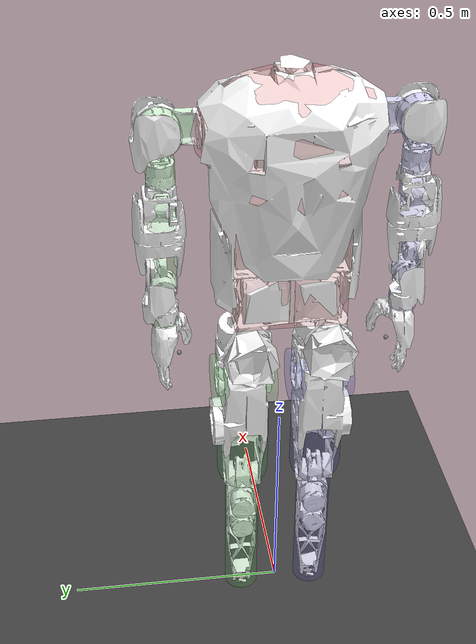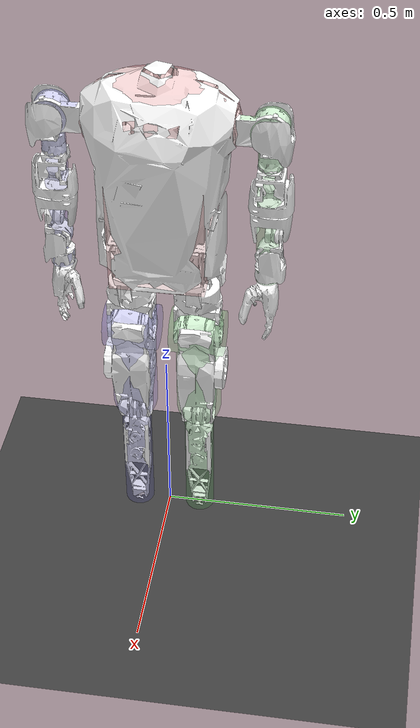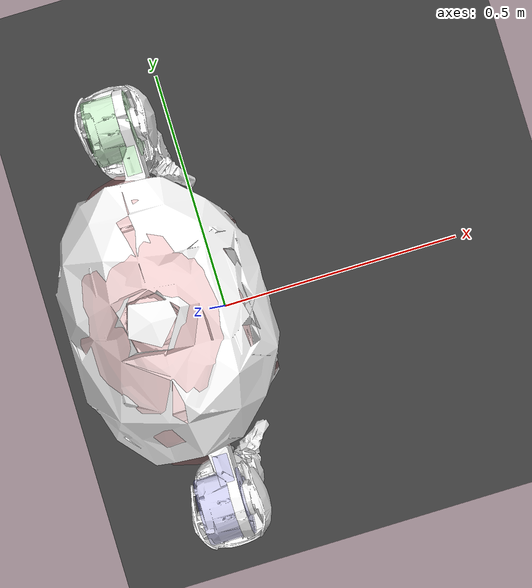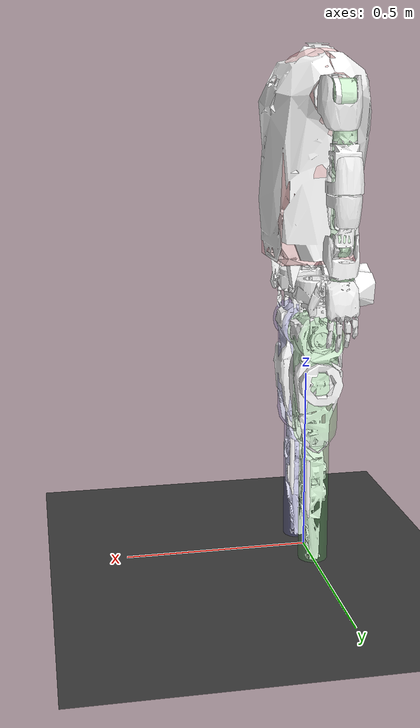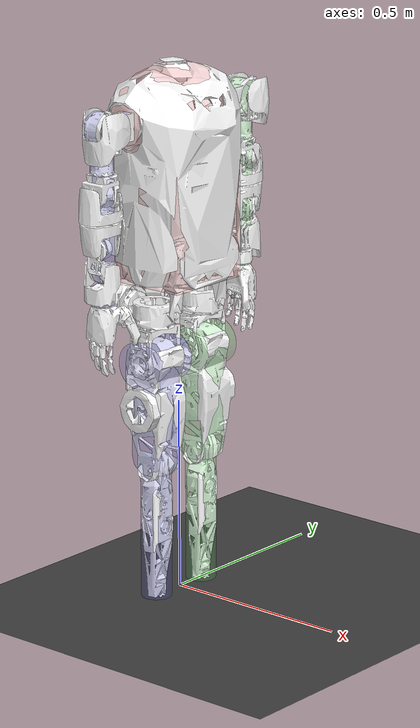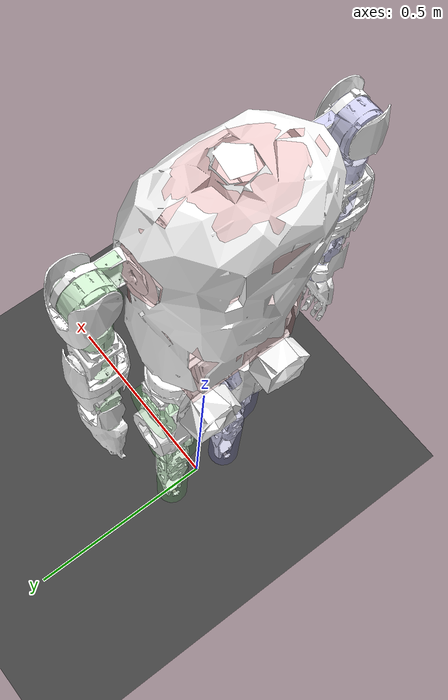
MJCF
<mujoco model="biped_s42">
    <compiler angle="radian" meshdir="../meshes/"/>
    <size njmax="500" nconmax="100"/>
    <option timestep="0.001"/>
    <default>
        <joint limited="true" armature="0.05" frictionloss="0.05"/>
        <default class="collision">
            <!-- User parameter for geoms is used to identify collision types -->
            <geom material="collision" contype="4" conaffinity="4" user="2" rgba="0.9 0.3 0.3 0.2"/>
            <default class="collision-left">
                <geom contype="1" conaffinity="2" rgba="0.3 0.9 0.3 0.2"/>
            </default>
            <default class="collision-right">
                <geom contype="2" conaffinity="1" rgba="0.3 0.3 0.9 0.2"/>
            </default>
        </default>
    </default>

    <asset>
        <texture type="skybox" builtin="gradient" width="128" height="128" rgb1="0.4 0.6 0.8" rgb2="0 0 0"/>
        <texture name="plane" type="2d" builtin="checker" rgb1="0.2 0.2 0.2" rgb2="0.3 0.3 0.3" width="512"
                 height="512"/>
        <material name="plane" reflectance="0.0" texture="plane" texrepeat="1 1" texuniform="true"/>
        <material name="collision" rgba="0.1 0.5 0.9 0"/>

        <mesh name="base_link" file="torso.STL"/>
        <mesh name="l_leg_roll" file="l_leg_roll.STL"/>
        <mesh name="l_leg_yaw" file="l_leg_yaw.STL"/>
        <mesh name="l_leg_pitch" file="l_leg_pitch.STL"/>
        <mesh name="l_knee" file="l_knee.STL"/>
        <mesh name="l_foot_pitch" file="l_foot_pitch.STL"/>
        <mesh name="l_foot_roll" file="l_foot_roll.STL"/>
        <mesh name="r_leg_roll" file="r_leg_roll.STL"/>
        <mesh name="r_leg_yaw" file="r_leg_yaw.STL"/>
        <mesh name="r_leg_pitch" file="r_leg_pitch.STL"/>
        <mesh name="r_knee" file="r_knee.STL"/>
        <mesh name="r_foot_pitch" file="r_foot_pitch.STL"/>
        <mesh name="r_foot_roll" file="r_foot_roll.STL"/>
        <mesh name="l_arm_pitch" file="l_arm_pitch.STL"/>
        <mesh name="l_arm_roll" file="l_arm_roll.STL"/>
        <mesh name="l_arm_yaw" file="l_arm_yaw.STL"/>
        <mesh name="l_forearm_pitch" file="l_forearm_pitch.STL"/>
        <mesh name="l_hand_yaw" file="l_hand_yaw.STL"/>
        <mesh name="l_hand_pitch" file="l_hand_pitch.STL"/>
        <mesh name="l_hand_roll" file="l_hand_roll.STL"/>
        <mesh name="r_arm_pitch" file="r_arm_pitch.STL"/>
        <mesh name="r_arm_roll" file="r_arm_roll.STL"/>
        <mesh name="r_arm_yaw" file="r_arm_yaw.STL"/>
        <mesh name="r_forearm_pitch" file="r_forearm_pitch.STL"/>
        <mesh name="r_hand_yaw" file="r_hand_yaw.STL"/>
        <mesh name="r_hand_pitch" file="r_hand_pitch.STL"/>
        <mesh name="r_hand_roll" file="r_hand_roll.STL"/>
    </asset>
    <worldbody>
        <geom name="floor" pos="0.001 0 0" size="100 10 .125" type="plane" material="plane" condim="3"
              conaffinity="15" friction="0.6 0.6 0.001"/>
        <light mode="trackcom" pos="0 0 5" dir="0 0 -1"/>
        <light directional="true" pos="0 0 3" dir="0 0 -1" diffuse="0.2 0.2 0.2" specular="0 0 0"/>

        <body name="base_link" pos="0 0 0.82">
            <freejoint/>
            <inertial pos="-0.0146307 0.00469612 0.162168" quat="1 0 0 0" mass="29.1592"
                      diaginertia="0.523209 0.422858 0.190433"/>
            <geom type="mesh" contype="0" conaffinity="0" group="1" density="0" rgba="1 1 1 1" mesh="base_link"/>
            <geom type="mesh" rgba="1 1 1 1" mesh="base_link"/>
            <geom type="box" size="0.1 0.12 0.15" pos="0 0 0.15" class="collision"/>
            <geom type="ellipsoid" size="0.12 0.2 0.13" pos="-0.02 0 0.42" class="collision"/>
            <site name="imu" pos="0 0 0"/>
            <body name="leg_l1_link" pos="-0.0024999 0.087 -0.066">
                <inertial pos="-0.00430148 -2.708e-05 -0.00851195" quat="0 0.5 0 0.5" mass="1.71093"
                          diaginertia="0.00371121 0.00277272 0.00205799"/>
                <joint name="leg_l1_joint" pos="0 0 0" axis="1 0 0" range="-0.31416 0.66323" damping='0.2'/>
                <geom type="mesh" contype="0" conaffinity="0" group="1" density="0" rgba="1 1 1 1" mesh="l_leg_roll"/>
                <body name="leg_l2_link">
                    <inertial pos="0 -0.0032256 -0.0908087" quat="0.5 0.5 0 0" mass="0.557629"
                              diaginertia="0.00213816 0.00140333 0.00117498"/>
                    <joint name="leg_l2_joint" pos="0 0 0" axis="0 0 1" range="-0.87266 0.7854" damping='0.2'/>
                    <geom type="mesh" contype="0" conaffinity="0" group="1" density="0" rgba="1 1 1 1"
                          mesh="l_leg_yaw"/>
                    <body name="leg_l3_link" pos="0 0 -0.1287">
                        <inertial pos="0.00185677 0.0102346 -0.0855838" quat="0.5 0 0 0.5" mass="4.43577"
                                  diaginertia="0.0434466 0.0427748 0.0109324"/>
                        <joint name="leg_l3_joint" pos="0 0 0" axis="0 1 0" range="-2.0071 1.5708" damping='0.2'/>
                        <geom type="mesh" contype="0" conaffinity="0" group="1" density="0" rgba="1 1 1 1"
                              mesh="l_leg_pitch"/>
                        <geom type='cylinder' size='0.06' fromto='0 -0.07 0 0 0.07 0' class='collision-left'/>
                        <geom type='capsule' size='0.06' fromto='0 0 0 0 0 -0.25' class='collision-left'/>
                        <body name="leg_l4_link" pos="0 0 -0.284">
                            <inertial pos="0.00716677 -6.696e-05 -0.114819" quat="1 0 0 0" mass="1.61275"
                                      diaginertia="0.011037 0.0109512 0.000872235"/>
                            <joint name="leg_l4_joint" pos="0 0 0" axis="0 1 0" range="0 2.618" damping='0.2'/>
                            <geom type="mesh" contype="0" conaffinity="0" group="1" density="0" rgba="1 1 1 1"
                                  mesh="l_knee"/>
                            <geom type='capsule' size='0.04' fromto='0 0 0 0 0 -0.34' class='collision-left'/>
                            <body name="leg_l5_link" pos="0 0 -0.346">
                                <inertial pos="0 0 0" quat="0.5 0.5 -0.5 0.5" mass="0.0719352"
                                          diaginertia="1.218e-05 6.92e-06 6.92e-06"/>
                                <joint name="leg_l5_joint" pos="0 0 0" axis="0 1 0" range="-0.78539816 0.34906585"
                                       damping='0.2'/>
                                <geom type="mesh" contype="0" conaffinity="0" group="1" density="0"
                                      rgba="0.647059 0.619608 0.588235 1" mesh="l_foot_pitch"/>
                                <body name="leg_l6_link">
                                    <inertial pos="0.0373958 -2.2061e-06 -0.0389679" quat="0 0.5 0 0.5" mass="0.501754"
                                              diaginertia="0.00177876 0.00163456 0.000397"/>
                                    <joint name="leg_l6_joint" pos="0 0 0" axis="1 0 0" range="-0.26179939 0.26179939"
                                           damping='0.2'/>
                                    <geom type="mesh" contype="0" conaffinity="0" group="1" density="0" rgba="1 1 1 1"
                                          mesh="l_foot_roll"/>
                                    <geom type="box" size="0.045 0.052 0.005" pos="0.04 0 -0.045" class="collision-left"/>
                                    <geom type="box" size="0.028 0.052 0.005" pos="-0.045 0 -0.0555" class="collision-left"/>
                                    <geom type="cylinder" size="0.052 0.005 0.005" pos="0.122 0 -0.0555" class="collision-left"/>
                                </body>
                            </body>
                        </body>
                    </body>
                </body>
            </body>
            <body name="leg_r1_link" pos="-0.0024999 -0.087 -0.066">
                <inertial pos="-0.00430146 2.709e-05 -0.00851195" quat="0 0.5 0 0.5" mass="1.71093"
                          diaginertia="0.00371121 0.00277272 0.00205799"/>
                <joint name="leg_r1_joint" pos="0 0 0" axis="1 0 0" range="-0.31416 0.66323" damping='0.2'/>
                <geom type="mesh" contype="0" conaffinity="0" group="1" density="0" rgba="1 1 1 1" mesh="r_leg_roll"/>
                <body name="leg_r2_link">
                    <inertial pos="0 0.00322561 -0.0908087" quat="0.5 0.5 0 0" mass="0.557629"
                              diaginertia="0.00213816 0.00140333 0.00117498"/>
                    <joint name="leg_r2_joint" pos="0 0 0" axis="0 0 1" range="-0.7854 0.87266" damping='0.2'/>
                    <geom type="mesh" contype="0" conaffinity="0" group="1" density="0" rgba="1 1 1 1"
                          mesh="r_leg_yaw"/>
                    <body name="leg_r3_link" pos="0 0 -0.1287">
                        <inertial pos="0.00185677 -0.0102346 -0.0855838" quat="0.5 0 0 0.5" mass="4.43577"
                                  diaginertia="0.0442361 0.0427757 0.010933"/>
                        <joint name="leg_r3_joint" pos="0 0 0" axis="0 1 0" range="-2.0071 1.5708" damping='0.2'/>
                        <geom type="mesh" contype="0" conaffinity="0" group="1" density="0" rgba="1 1 1 1"
                              mesh="r_leg_pitch"/>
                        <geom type='cylinder' size='0.06' fromto='0 -0.07 0 0 0.07 0' class='collision-right'/>
                        <geom type='capsule' size='0.06' fromto='0 0 0 0 0 -0.25' class='collision-right'/>
                        <body name="leg_r4_link" pos="0 0 -0.284">
                            <inertial pos="0.00716677 6.696e-05 -0.114819" quat="1 0 0 0" mass="1.61275"
                                      diaginertia="0.011037 0.0109512 0.000872235"/>
                            <joint name="leg_r4_joint" pos="0 0 0" axis="0 1 0" range="0 2.618" damping='0.2'/>
                            <geom type="mesh" contype="0" conaffinity="0" group="1" density="0" rgba="1 1 1 1"
                                  mesh="r_knee"/>
                            <geom type='capsule' size='0.04' fromto='0 0 0 0 0 -0.34' class='collision-right'/>
                            <body name="leg_r5_link" pos="0 0 -0.346">
                                <inertial pos="0 0 0" quat="0.5 0.5 -0.5 0.5" mass="0.0719352"
                                          diaginertia="1.218e-05 6.92e-06 6.92e-06"/>
                                <joint name="leg_r5_joint" pos="0 0 0" axis="0 1 0" range="-0.78539816 0.34906585"
                                       damping='0.2'/>
                                <geom type="mesh" contype="0" conaffinity="0" group="1" density="0"
                                      rgba="0.647059 0.619608 0.588235 1" mesh="r_foot_pitch"/>
                                <body name="leg_r6_link">
                                    <inertial pos="0.0373958 -2.2061e-06 -0.0389679" quat="0 0.5 0 0.5" mass="0.501754"
                                              diaginertia="0.00177876 0.00163456 0.000397"/>
                                    <joint name="leg_r6_joint" pos="0 0 0" axis="1 0 0" range="-0.26179939 0.26179939"
                                           damping='0.2'/>
                                    <geom type="mesh" contype="0" conaffinity="0" group="1" density="0" rgba="1 1 1 1"
                                          mesh="r_foot_roll"/>
                                    <geom type="box" size="0.045 0.052 0.005" pos="0.04 0 -0.045" class="collision-right"/>
                                    <geom type="box" size="0.028 0.052 0.005" pos="-0.045 0 -0.0555" class="collision-right"/>
                                    <geom type="cylinder" size="0.052 0.005 0.005" pos="0.122 0 -0.0555" class="collision-right"/>
                                </body>
                            </body>
                        </body>
                    </body>
                </body>
            </body>
            <body name="zarm_l1_link" pos="-0.0175476 0.2617 0.4245">
                <inertial pos="0.0146835 -0.0166604 -6.82857e-05" quat="1 0 0 0" mass="0.794"
                          diaginertia="0.000271947 0.000196224 0.000121256"/>
                <joint name="zarm_l1_joint" pos="0 0 0" axis="0 1 0" range="-2.0933 0.5233" actuatorfrcrange="-60 60"
                       damping='0.2'/>
                <geom type="mesh" contype="0" conaffinity="0" group="1" density="0" rgba="1 1 1 1" mesh="l_arm_pitch"/>
                <geom type="box" size="0.01 0.02 0.035" pos="0.025 -0.05 0" class='collision-left'/>
                <body name="zarm_l2_link">
                    <inertial pos="0.0222873 0.0156946 -0.0202262" quat="1 0 0 0" mass="0.20735"
                              diaginertia="0.000283338 0.000217951 0.000157462"/>
                    <joint name="zarm_l2_joint" pos="0 0 0" axis="1 0 0" range="-0.3489 2.0933"
                           actuatorfrcrange="-82.8 82.8" damping='0.2'/>
                    <geom type="mesh" contype="0" conaffinity="0" group="1" density="0" rgba="1 1 1 1"
                          mesh="l_arm_roll"/>
                    <geom type='cylinder' size='0.045' fromto='0.04 0 0 -0.02 0 0' class='collision-left'/>
                    <body name="zarm_l3_link">
                        <inertial pos="6.1694e-05 0.00525815 -0.128822" quat="1 0 0 0" mass="1.12063"
                                  diaginertia="9.38963e-05 7.96873e-05 7.00576e-05"/>
                        <joint name="zarm_l3_joint" pos="0 0 0" axis="0 0 1" range="-1.57 1.57"
                               actuatorfrcrange="-60 60" damping='3'/>
                        <geom type="mesh" contype="0" conaffinity="0" group="1" density="0" rgba="1 1 1 1"
                              mesh="l_arm_yaw"/>
                        <geom type='capsule' size='0.03' fromto='0 0 -0.06 0 0 -0.1636' class='collision-left'/>
                        <body name="zarm_l4_link" pos="0 0 -0.1636">
                            <inertial pos="-1.42819e-05 0.00938314 -0.0522688" quat="1 0 0 0" mass="0.395825"
                                      diaginertia="0.00013362 0.000113739 9.55807e-05"/>
                            <joint name="zarm_l4_joint" pos="0 0 0" axis="0 1 0" range="-2.0933 0.5236"
                                   actuatorfrcrange="-60 60" damping='3'/>
                            <geom type="mesh" contype="0" conaffinity="0" group="1" density="0" rgba="1 1 1 1"
                                  mesh="l_forearm_pitch"/>
                            <geom type='capsule' size='0.03' fromto='0 0 0 0 0 -0.19105' class='collision-left'/>
                            <body name="zarm_l5_link" pos="0 0 -0.19105">
                                <inertial pos="0.000113133 0.00969228 0.0817961" quat="1 0 0 0" mass="0.380792"
                                          diaginertia="0.000122264 8.44608e-05 7.64924e-05"/>
                                <joint name="zarm_l5_joint" pos="0 0 0" axis="0 0 1" range="-1.57 1.57"
                                       actuatorfrcrange="-6 6" damping='0.2'/>
                                <geom type="mesh" contype="0" conaffinity="0" group="1" density="0" rgba="1 1 1 1"
                                      mesh="l_hand_yaw"/>
                                <body name="zarm_l6_link">
                                    <inertial pos="0.0081061 0.00489663 0.00622489" quat="1 0 0 0" mass="0.376651"
                                              diaginertia="4.90153e-05 3.61802e-05 2.19136e-05"/>
                                    <joint name="zarm_l6_joint" pos="0 0 0" axis="0 1 0" range="-1.57 1.57"
                                           actuatorfrcrange="-6 6" damping='0.2'/>
                                    <geom type="mesh" contype="0" conaffinity="0" group="1" density="0" rgba="1 1 1 1"
                                          mesh="l_hand_pitch"/>
                                    <body name="zarm_l7_link">
                                        <inertial pos="0.00557087 0.00644656 -0.0826894" quat="1 0 0 0" mass="0.705193"
                                                  diaginertia="0.000126318 0.000107575 8.42004e-05"/>
                                        <joint name="zarm_l7_joint" pos="0 0 0" axis="1 0 0" range="-1.57 1.57"
                                               actuatorfrcrange="-6 6" damping='0.2'/>
                                        <geom type="mesh" contype="0" conaffinity="0" group="1" density="0"
                                              rgba="1 1 1 1" mesh="l_hand_roll"/>
                                        <geom size="0.005" pos="0 -0.03 -0.17"/>
                                        <geom type="cylinder" size="0.03" fromto="0 0 -0.05 0 0 -0.085"
                                              class='collision-left'/>
                                    </body>
                                </body>
                            </body>
                        </body>
                    </body>
                </body>
            </body>
            <body name="zarm_r1_link" pos="-0.0175476 -0.2617 0.4245">
                <inertial pos="0.0146744 0.0168298 -8.16712e-05" quat="1 0 0 0" mass="0.794"
                          diaginertia="0.000271946 0.000196219 0.000121103"/>
                <joint name="zarm_r1_joint" pos="0 0 0" axis="0 1 0" range="-2.0933 0.5233" actuatorfrcrange="-60 60"
                       damping='0.2'/>
                <geom type="mesh" contype="0" conaffinity="0" group="1" density="0" rgba="1 1 1 1" mesh="r_arm_pitch"/>
                <geom type="box" size="0.01 0.02 0.035" pos="0.025 0.05 0" class='collision-right'/>
                <body name="zarm_r2_link">
                    <inertial pos="0.0223009 -0.015695 -0.0202308" quat="1 0 0 0" mass="0.20735"
                              diaginertia="0.000283519 0.000218099 0.000157689"/>
                    <joint name="zarm_r2_joint" pos="0 0 0" axis="1 0 0" range="-2.0933 0.3489"
                           actuatorfrcrange="-82.8 82.8" damping='0.2'/>
                    <geom type="mesh" contype="0" conaffinity="0" group="1" density="0" rgba="1 1 1 1"
                          mesh="r_arm_roll"/>
                    <geom type='cylinder' size='0.045' fromto='0.04 0 0 -0.02 0 0' class='collision-right'/>
                    <body name="zarm_r3_link">
                        <inertial pos="-4.82749e-05 -0.00525815 -0.128822" quat="1 0 0 0" mass="1.12063"
                                  diaginertia="9.38963e-05 7.96873e-05 7.00576e-05"/>
                        <joint name="zarm_r3_joint" pos="0 0 0" axis="0 0 1" range="-1.57 1.57"
                               actuatorfrcrange="-60 60" damping='3'/>
                        <geom type="mesh" contype="0" conaffinity="0" group="1" density="0" rgba="1 1 1 1"
                              mesh="r_arm_yaw"/>
                        <geom type='capsule' size='0.03' fromto='0 0 -0.06 0 0 -0.1636' class='collision-right'/>
                        <body name="zarm_r4_link" pos="0 0 -0.1636">
                            <inertial pos="-0.000127233 -0.00951603 -0.0522688" quat="1 0 0 0" mass="0.395825"
                                      diaginertia="0.000133455 0.000113904 9.55807e-05"/>
                            <joint name="zarm_r4_joint" pos="0 0 0" axis="0 1 0" range="-2.0933 0.5236"
                                   actuatorfrcrange="-60 60" damping='3'/>
                            <geom type="mesh" contype="0" conaffinity="0" group="1" density="0" rgba="1 1 1 1"
                                  mesh="r_forearm_pitch"/>
                            <geom type='capsule' size='0.03' fromto='0 0 0 0 0 -0.19105' class='collision-right'/>
                            <body name="zarm_r5_link" pos="0 0 -0.19105">
                                <inertial pos="-0.000113133 -0.00974484 0.0817961" quat="1 0 0 0" mass="0.380792"
                                          diaginertia="0.000122264 8.44608e-05 7.64924e-05"/>
                                <joint name="zarm_r5_joint" pos="0 0 0" axis="0 0 1" range="-1.57 1.57"
                                       actuatorfrcrange="-6 6" damping='0.2'/>
                                <geom type="mesh" contype="0" conaffinity="0" group="1" density="0" rgba="1 1 1 1"
                                      mesh="r_hand_yaw"/>
                                <body name="zarm_r6_link">
                                    <inertial pos="0.00735987 -0.00475238 0.00605888" quat="1 0 0 0" mass="0.376651"
                                              diaginertia="4.89785e-05 3.6108e-05 2.20226e-05"/>
                                    <joint name="zarm_r6_joint" pos="0 0 0" axis="0 1 0" range="-1.57 1.57"
                                           actuatorfrcrange="-6 6" damping='0.2'/>
                                    <geom type="mesh" contype="0" conaffinity="0" group="1" density="0" rgba="1 1 1 1"
                                          mesh="r_hand_pitch"/>
                                    <body name="zarm_r7_link">
                                        <inertial pos="0.00459104 -0.00584264 -0.0836966" quat="1 0 0 0" mass="0.705193"
                                                  diaginertia="0.000247322 0.000207835 0.000163356"/>
                                        <joint name="zarm_r7_joint" pos="0 0 0" axis="1 0 0" range="-1.57 1.57"
                                               actuatorfrcrange="-6 6" damping='0.2'/>
                                        <geom type="mesh" contype="0" conaffinity="0" group="1" density="0"
                                              rgba="1 1 1 1" mesh="r_hand_roll"/>
                                        <geom size="0.005" pos="0 0.03 -0.17"/>
                                        <geom type="cylinder" size="0.03" fromto="0 0 -0.05 0 0 -0.085"
                                              class='collision-right'/>
                                    </body>
                                </body>
                            </body>
                        </body>
                    </body>
                </body>
            </body>
        </body>
    </worldbody>
    <actuator>
        <motor gear="1" joint="leg_l1_joint" name="leg_l1_motor" ctrllimited="true" ctrlrange='-180 180'/>
        <motor gear="1" joint="leg_l2_joint" name="leg_l2_motor" ctrllimited="true" ctrlrange='-100 100'/>
        <motor gear="1" joint="leg_l3_joint" name="leg_l3_motor" ctrllimited="true" ctrlrange='-100 100'/>
        <motor gear="1" joint="leg_l4_joint" name="leg_l4_motor" ctrllimited="true" ctrlrange='-180 180'/>
        <motor gear="1" joint="leg_l5_joint" name="leg_l5_motor" ctrllimited="true" ctrlrange='-72 72'/>
        <motor gear="1" joint="leg_l6_joint" name="leg_l6_motor" ctrllimited="true" ctrlrange='-36 36'/>

        <motor gear="1" joint="leg_r1_joint" name="leg_r1_motor" ctrllimited="true" ctrlrange='-180 180'/>
        <motor gear="1" joint="leg_r2_joint" name="leg_r2_motor" ctrllimited="true" ctrlrange='-100 100'/>
        <motor gear="1" joint="leg_r3_joint" name="leg_r3_motor" ctrllimited="true" ctrlrange='-100 100'/>
        <motor gear="1" joint="leg_r4_joint" name="leg_r4_motor" ctrllimited="true" ctrlrange='-180 180'/>
        <motor gear="1" joint="leg_r5_joint" name="leg_r5_motor" ctrllimited="true" ctrlrange='-72 72'/>
        <motor gear="1" joint="leg_r6_joint" name="leg_r6_motor" ctrllimited="true" ctrlrange='-36 36'/>

        <motor gear="1" joint="zarm_l1_joint" name="zarm_l1_motor" ctrllimited="true" ctrlrange='-5 5'/>
        <motor gear="1" joint="zarm_l2_joint" name="zarm_l2_motor" ctrllimited="true" ctrlrange='-5 5'/>
        <motor gear="1" joint="zarm_l3_joint" name="zarm_l3_motor" ctrllimited="true" ctrlrange='-5 5'/>
        <motor gear="1" joint="zarm_l4_joint" name="zarm_l4_motor" ctrllimited="true" ctrlrange='-5 5'/>
        <motor gear="1" joint="zarm_l5_joint" name="zarm_l5_motor" ctrllimited="true" ctrlrange='-5 5'/>
        <motor gear="1" joint="zarm_l6_joint" name="zarm_l6_motor" ctrllimited="true" ctrlrange='-5 5'/>
        <motor gear="1" joint="zarm_l7_joint" name="zarm_l7_motor" ctrllimited="true" ctrlrange='-5 5'/>

        <motor gear="1" joint="zarm_r1_joint" name="zarm_r1_motor" ctrllimited="true" ctrlrange='-5 5'/>
        <motor gear="1" joint="zarm_r2_joint" name="zarm_r2_motor" ctrllimited="true" ctrlrange='-5 5'/>
        <motor gear="1" joint="zarm_r3_joint" name="zarm_r3_motor" ctrllimited="true" ctrlrange='-5 5'/>
        <motor gear="1" joint="zarm_r4_joint" name="zarm_r4_motor" ctrllimited="true" ctrlrange='-5 5'/>
        <motor gear="1" joint="zarm_r5_joint" name="zarm_r5_motor" ctrllimited="true" ctrlrange='-5 5'/>
        <motor gear="1" joint="zarm_r6_joint" name="zarm_r6_motor" ctrllimited="true" ctrlrange='-5 5'/>
        <motor gear="1" joint="zarm_r7_joint" name="zarm_r7_motor" ctrllimited="true" ctrlrange='-5 5'/>
    </actuator>
    <sensor>
        <accelerometer name="BodyAcc" site="imu"/>
        <velocimeter name="BodyVel" site="imu"/>
        <gyro name="BodyGyro" site="imu"/>
        <framepos name="BodyPos" objtype="site" objname="imu"/>
        <framequat name="BodyQuat" objtype="site" objname="imu"/>

        <jointpos name="leg_l1_pos" joint="leg_l1_joint"/>
        <jointpos name="leg_l2_pos" joint="leg_l2_joint"/>
        <jointpos name="leg_l3_pos" joint="leg_l3_joint"/>
        <jointpos name="leg_l4_pos" joint="leg_l4_joint"/>
        <jointpos name="leg_l5_pos" joint="leg_l5_joint"/>
        <jointpos name="leg_l6_pos" joint="leg_l6_joint"/>

        <jointpos name="leg_r1_pos" joint="leg_r1_joint"/>
        <jointpos name="leg_r2_pos" joint="leg_r2_joint"/>
        <jointpos name="leg_r3_pos" joint="leg_r3_joint"/>
        <jointpos name="leg_r4_pos" joint="leg_r4_joint"/>
        <jointpos name="leg_r5_pos" joint="leg_r5_joint"/>
        <jointpos name="leg_r6_pos" joint="leg_r6_joint"/>

        <jointpos name="zarm_l1_pos" joint="zarm_l1_joint"/>
        <jointpos name="zarm_l2_pos" joint="zarm_l2_joint"/>
        <jointpos name="zarm_l3_pos" joint="zarm_l3_joint"/>
        <jointpos name="zarm_l4_pos" joint="zarm_l4_joint"/>
        <jointpos name="zarm_l5_pos" joint="zarm_l5_joint"/>
        <jointpos name="zarm_l6_pos" joint="zarm_l6_joint"/>
        <jointpos name="zarm_l7_pos" joint="zarm_l7_joint"/>

        <jointpos name="zarm_r1_pos" joint="zarm_r1_joint"/>
        <jointpos name="zarm_r2_pos" joint="zarm_r2_joint"/>
        <jointpos name="zarm_r3_pos" joint="zarm_r3_joint"/>
        <jointpos name="zarm_r4_pos" joint="zarm_r4_joint"/>
        <jointpos name="zarm_r5_pos" joint="zarm_r5_joint"/>
        <jointpos name="zarm_r6_pos" joint="zarm_r6_joint"/>
        <jointpos name="zarm_r7_pos" joint="zarm_r7_joint"/>

        <jointvel name="leg_l1_vel" joint="leg_l1_joint"/>
        <jointvel name="leg_l2_vel" joint="leg_l2_joint"/>
        <jointvel name="leg_l3_vel" joint="leg_l3_joint"/>
        <jointvel name="leg_l4_vel" joint="leg_l4_joint"/>
        <jointvel name="leg_l5_vel" joint="leg_l5_joint"/>
        <jointvel name="leg_l6_vel" joint="leg_l6_joint"/>

        <jointvel name="leg_r1_vel" joint="leg_r1_joint"/>
        <jointvel name="leg_r2_vel" joint="leg_r2_joint"/>
        <jointvel name="leg_r3_vel" joint="leg_r3_joint"/>
        <jointvel name="leg_r4_vel" joint="leg_r4_joint"/>
        <jointvel name="leg_r5_vel" joint="leg_r5_joint"/>
        <jointvel name="leg_r6_vel" joint="leg_r6_joint"/>

        <jointvel name="zarm_l1_vel" joint="zarm_l1_joint"/>
        <jointvel name="zarm_l2_vel" joint="zarm_l2_joint"/>
        <jointvel name="zarm_l3_vel" joint="zarm_l3_joint"/>
        <jointvel name="zarm_l4_vel" joint="zarm_l4_joint"/>
        <jointvel name="zarm_l5_vel" joint="zarm_l5_joint"/>
        <jointvel name="zarm_l6_vel" joint="zarm_l6_joint"/>
        <jointvel name="zarm_l7_vel" joint="zarm_l7_joint"/>

        <jointvel name="zarm_r1_vel" joint="zarm_r1_joint"/>
        <jointvel name="zarm_r2_vel" joint="zarm_r2_joint"/>
        <jointvel name="zarm_r3_vel" joint="zarm_r3_joint"/>
        <jointvel name="zarm_r4_vel" joint="zarm_r4_joint"/>
        <jointvel name="zarm_r5_vel" joint="zarm_r5_joint"/>
        <jointvel name="zarm_r6_vel" joint="zarm_r6_joint"/>
        <jointvel name="zarm_r7_vel" joint="zarm_r7_joint"/>
    </sensor>
</mujoco>
